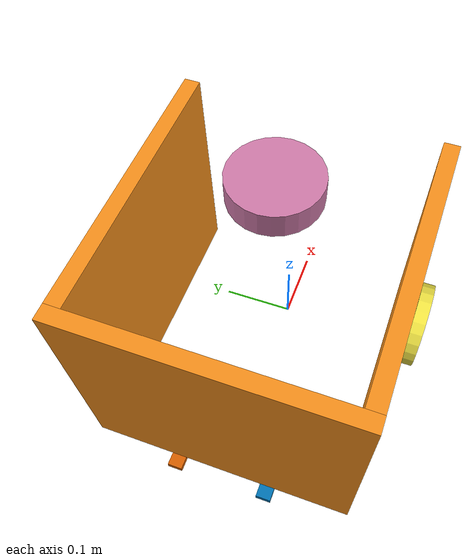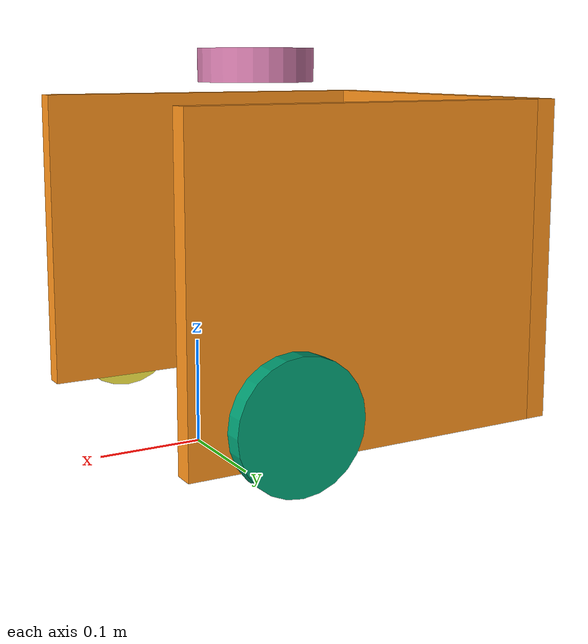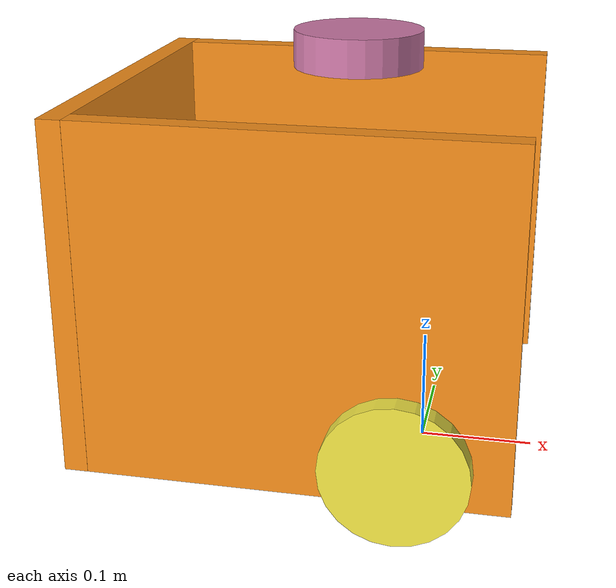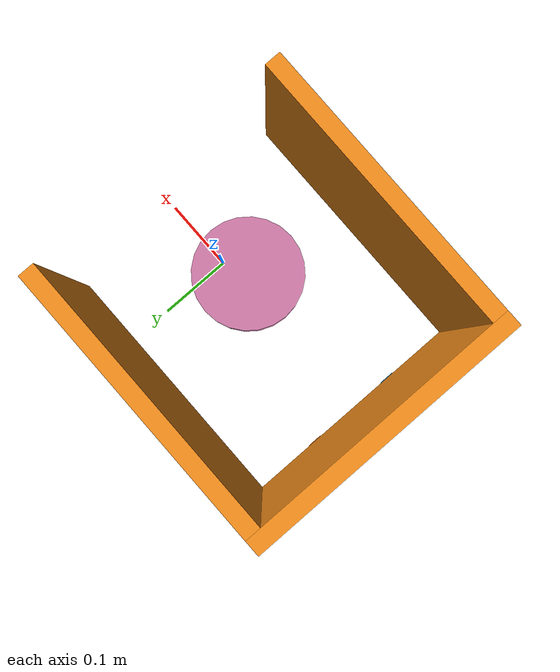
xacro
<?xml version="1.0" ?>
<robot name="myrover" xmlns:xacro="http://ros.org/wiki/xacro">

  <xacro:include filename="$(find rover)/urdf/colors.xacro"/>
  <xacro:include filename="$(find rover)/urdf/myrover.gazebo.xacro"/>

  <link name="base_footprint"/>

  <joint name="base_joint" type="fixed">
    <parent link="base_footprint"/>
    <child link="base_link" />
    <origin xyz="0 0 0.010" rpy="0 0 0"/>
  </joint>

  <link name="base_link">
	<visual>
      <origin xyz="-0.27 0 0.17" rpy="0 0 0"/>
      <geometry>
        <box size="0.02 0.35 0.3"/>
      </geometry>
      <material name="orange"/>
    </visual>
    <visual>
      <origin xyz="-0.085 0.165 0.17" rpy="0 0 1.57"/>
      <geometry>
        <box size="0.02 0.35 0.3"/>
      </geometry>
      <material name="orange"/>
    </visual>
    <visual>
      <origin xyz="-0.085 -0.165 0.17" rpy="0 0 1.57"/>
      <geometry>
        <box size="0.02 0.35 0.3"/>
      </geometry>
      <material name="orange"/>
    </visual>

    <collision>
      <origin xyz="-0.27 0 0.17" rpy="0 0 0"/>
      <geometry>
        <box size="0.02 0.35 0.3"/>
      </geometry>
      <material name="orange"/>
    </collision>
    <collision>
      <origin xyz="-0.085 0.165 0.17" rpy="0 0 1.57"/>
      <geometry>
        <box size="0.02 0.35 0.3"/>
      </geometry>
      <material name="orange"/>
    </collision>
    <collision>
      <origin xyz="-0.085 -0.165 0.17" rpy="0 0 1.57"/>
      <geometry>
        <box size="0.02 0.35 0.3"/>
      </geometry>
      <material name="orange"/>
    </collision>

    <inertial>
      <origin xyz="0 0 0" rpy="0 0 0"/>
      <mass value="2"/>
      <inertia ixx="0.035416666666667" ixy="0" ixz="0"
               iyy="0.035416666666667" iyz="0"
               izz="0.040833333333333" />
    </inertial>
  </link>

  <joint name="wheel_left_joint" type="continuous">
    <parent link="base_link"/>
    <child link="wheel_left_link"/>
    <origin xyz="0.0 0.194 0.06" rpy="-1.57 0 0"/>
    <axis xyz="0 0 1"/>
  </joint>

  <link name="wheel_left_link">
    <visual>
      <origin xyz="0 0 0" rpy="0 0 0"/>
      <geometry>
        <!--mesh filename="package://turtlebot3_description/meshes/wheels/left_tire.stl" scale="0.001 0.001 0.001"/-->
        <cylinder length="0.018" radius="0.06"/>
      </geometry>
      <material name="dark"/>
    </visual>

    <collision>
      <origin xyz="0 0 0" rpy="0 0 0"/>
      <geometry>
        <cylinder length="0.018" radius="0.06"/>
      </geometry>
    </collision>

    <inertial>
      <origin xyz="0 0 0" />
      <mass value="2.8498940e-02" />
      <inertia ixx="1.1175580e-05" ixy="-4.2369783e-11" ixz="-5.9381719e-09"
               iyy="1.1192413e-05" iyz="-1.4400107e-11"
               izz="2.0712558e-05" />
      </inertial>
  </link>

  <joint name="wheel_right_joint" type="continuous">
    <parent link="base_link"/>
    <child link="wheel_right_link"/>
    <origin xyz="0.0 -0.194 0.06" rpy="-1.57 0 0"/>
    <axis xyz="0 0 1"/>
  </joint>

  <link name="wheel_right_link">
    <visual>
      <origin xyz="0 0 0" rpy="0 0 0"/>
      <geometry>
        <!--mesh filename="package://turtlebot3_description/meshes/wheels/right_tire.stl" scale="0.001 0.001 0.001"/-->
        <cylinder length="0.018" radius="0.06"/>
      </geometry>
      <material name="dark"/>
    </visual>

    <collision>
      <origin xyz="0 0 0" rpy="0 0 0"/>
      <geometry>
        <cylinder length="0.018" radius="0.06"/>
      </geometry>
    </collision>

    <inertial>
      <origin xyz="0 0 0" />
      <mass value="2.8498940e-02" />
      <inertia ixx="1.1175580e-05" ixy="-4.2369783e-11" ixz="-5.9381719e-09"
               iyy="1.1192413e-05" iyz="-1.4400107e-11"
               izz="2.0712558e-05" />
      </inertial>
  </link>

  <joint name="caster_back_right_joint" type="fixed">
    <parent link="base_link"/>
    <child link="caster_back_right_link"/>
    <origin xyz="-0.277 -0.064 -0.004" rpy="-1.57 0 0"/>
  </joint>

  <link name="caster_back_right_link">
    <collision>
      <origin xyz="0 0.001 0" rpy="0 0 0"/>
      <geometry>
        <box size="0.030 0.009 0.020"/>
      </geometry>
    </collision>

	<visual>
      <origin xyz="0 0.001 0" rpy="0 0 0"/>
      <geometry>
        <box size="0.030 0.009 0.020"/>
      </geometry>
    </visual>

    <inertial>
      <origin xyz="0 0 0" />
      <mass value="0.005" />
      <inertia ixx="0.001" ixy="0.0" ixz="0.0"
               iyy="0.001" iyz="0.0"
               izz="0.001" />
    </inertial>
  </link>

  <joint name="caster_back_left_joint" type="fixed">
    <parent link="base_link"/>
    <child link="caster_back_left_link"/>
    <origin xyz="-0.277 0.064 -0.004" rpy="-1.57 0 0"/>
  </joint>

  <link name="caster_back_left_link">
    <collision>
      <origin xyz="0 0.001 0" rpy="0 0 0"/>
      <geometry>
        <box size="0.030 0.009 0.020"/>
      </geometry>
    </collision>

	<visual>
      <origin xyz="0 0.001 0" rpy="0 0 0"/>
      <geometry>
        <box size="0.030 0.009 0.020"/>
      </geometry>
    </visual>

    <inertial>
      <origin xyz="0 0 0" />
      <mass value="0.005" />
      <inertia ixx="0.001" ixy="0.0" ixz="0.0"
               iyy="0.001" iyz="0.0"
               izz="0.001" />
    </inertial>
  </link>

  <link name="base_scan">
    <visual>
      <origin xyz="0 0 0" rpy="0 0 0"/>
      <geometry>
        <!--mesh filename="package://turtlebot3_description/meshes/sensors/lds.stl" scale="0.001 0.001 0.001"/-->
        <cylinder length="0.0315" radius="0.055"/>
      </geometry>
      <material name="dark"/>
    </visual>

    <collision>
      <origin xyz="0.015 0 -0.0065" rpy="0 0 0"/>
      <geometry>
        <cylinder length="0.0315" radius="0.055"/>
      </geometry>
    </collision>

    <inertial>
      <mass value="0.114" />
      <origin xyz="0 0 0" />
      <inertia ixx="0.001" ixy="0.0" ixz="0.0"
               iyy="0.001" iyz="0.0"
               izz="0.001" />
    </inertial>
  </link>

  <joint name="scan_joint" type="fixed">
    <parent link="base_link"/>
    <child link="base_scan"/>
    <origin xyz="-0.064 0 0.35" rpy="0 0 0"/>
  </joint>

</robot>
